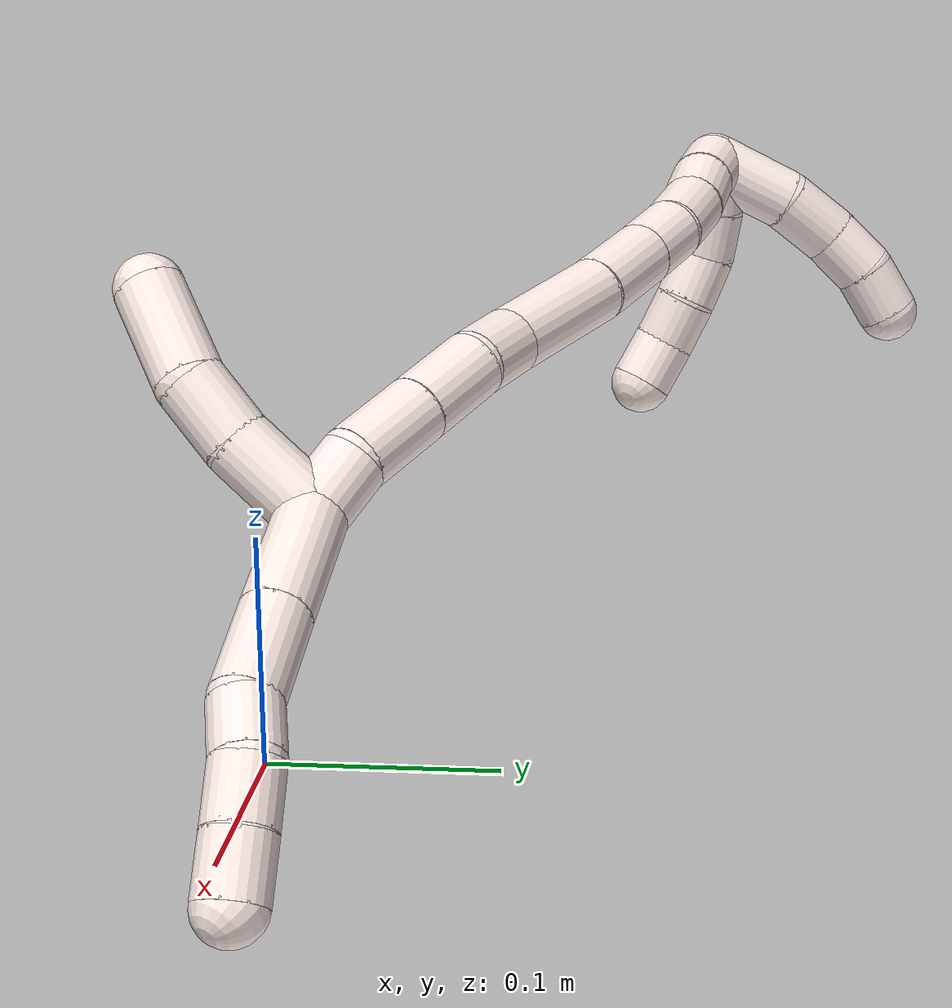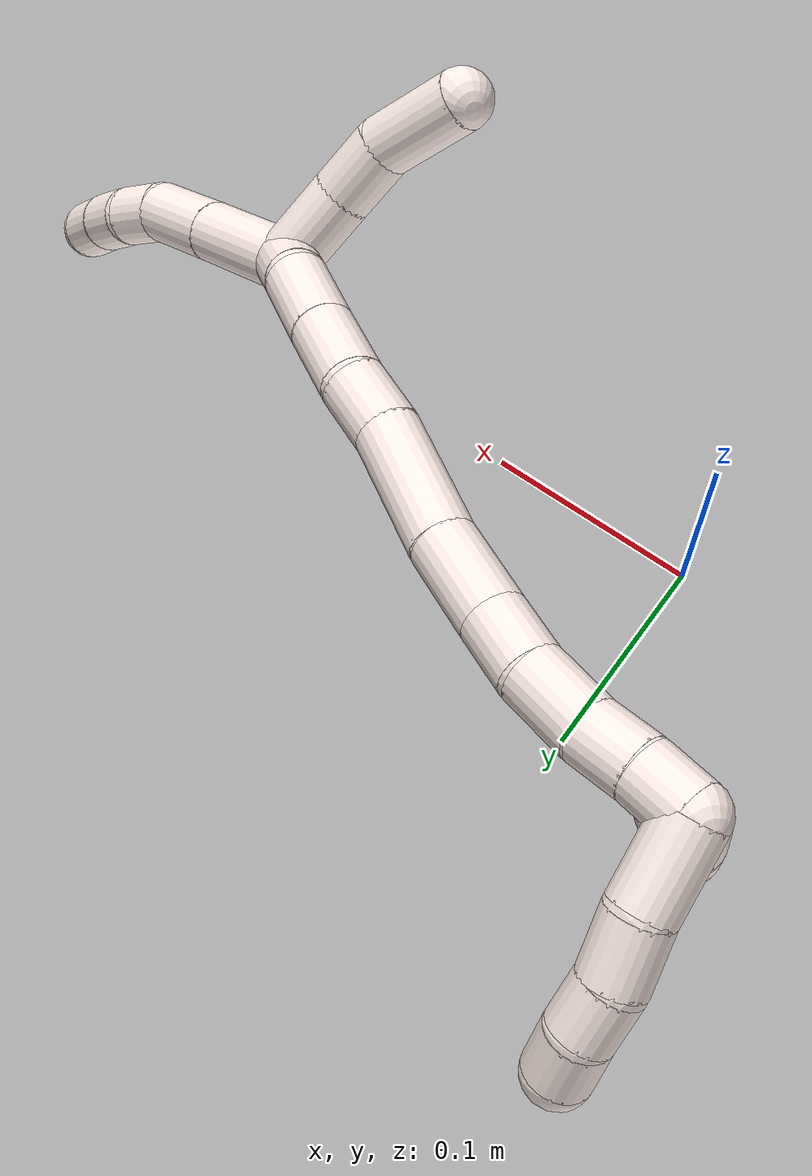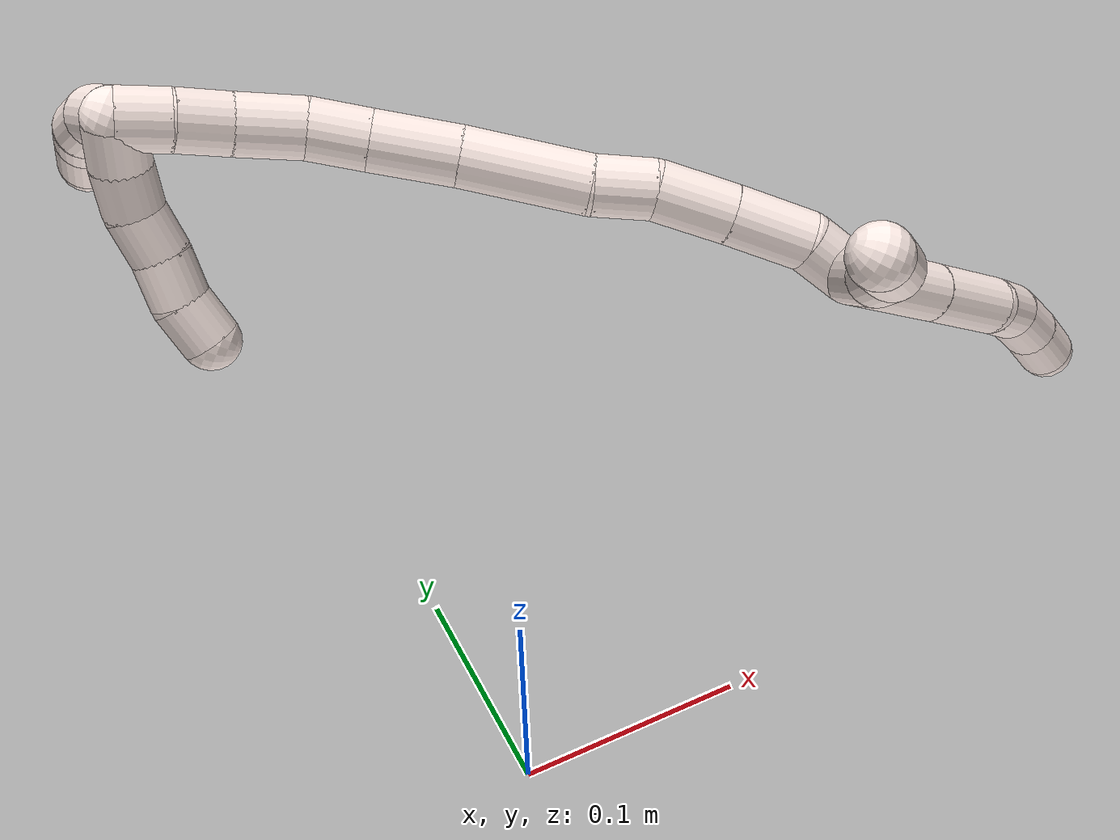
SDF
<sdf version="1.7">
 <world name="default">
  <model name="11">
   <static>0</static>
   <link name="11">
    <collision name="collision-cylinder-e_1_2_8">
     <pose>0.008145 -0.001947 -0.022142 3.05388 0.351233 2.65669</pose>
     <geometry><cylinder><radius>0.0125</radius><length>0.047346</length></cylinder></geometry>
     <surface>
      <friction><ode><mu>1.16</mu><mu2>1.16</mu2><slip1>0</slip1><slip2>0</slip2></ode></friction>
      <contact><ode><kp>1e+06</kp><kd>1</kd><max_vel>0</max_vel><min_depth>0.001</min_depth></ode></contact>
     </surface>
    </collision>
    <visual name="visual-cylinder-e_1_2_8">
     <pose>0.008145 -0.001947 -0.022142 3.05388 0.351233 2.65669</pose>
     <geometry><cylinder><radius>0.0125</radius><length>0.047346</length></cylinder></geometry>
     <material><ambient>1 0.933333 0.909804 1</ambient></material>
    </visual>
    <collision name="collision-cylinder-e_2_8_9">
     <pose>0.022716 -0.005257 -0.061333 3.06184 0.359433 2.70927</pose>
     <geometry><cylinder><radius>0.0125</radius><length>0.03654</length></cylinder></geometry>
     <surface>
      <friction><ode><mu>1.16</mu><mu2>1.16</mu2><slip1>0</slip1><slip2>0</slip2></ode></friction>
      <contact><ode><kp>1e+06</kp><kd>1</kd><max_vel>0</max_vel><min_depth>0.001</min_depth></ode></contact>
     </surface>
    </collision>
    <visual name="visual-cylinder-e_2_8_9">
     <pose>0.022716 -0.005257 -0.061333 3.06184 0.359433 2.70927</pose>
     <geometry><cylinder><radius>0.0125</radius><length>0.03654</length></cylinder></geometry>
     <material><ambient>1 0.933333 0.909804 1</ambient></material>
    </visual>
    <collision name="collision-cylinder-e_3_9_10">
     <pose>0.035507 -0.005911 -0.086712 -3.05675 0.650609 -2.89121</pose>
     <geometry><cylinder><radius>0.0125</radius><length>0.021016</length></cylinder></geometry>
     <surface>
      <friction><ode><mu>1.16</mu><mu2>1.16</mu2><slip1>0</slip1><slip2>0</slip2></ode></friction>
      <contact><ode><kp>1e+06</kp><kd>1</kd><max_vel>0</max_vel><min_depth>0.001</min_depth></ode></contact>
     </surface>
    </collision>
    <visual name="visual-cylinder-e_3_9_10">
     <pose>0.035507 -0.005911 -0.086712 -3.05675 0.650609 -2.89121</pose>
     <geometry><cylinder><radius>0.0125</radius><length>0.021016</length></cylinder></geometry>
     <material><ambient>1 0.933333 0.909804 1</ambient></material>
    </visual>
    <collision name="collision-cylinder-e_4_10_11">
     <pose>0.047006 -0.002086 -0.104545 -2.82471 0.474379 -1.97352</pose>
     <geometry><cylinder><radius>0.0125</radius><length>0.02248</length></cylinder></geometry>
     <surface>
      <friction><ode><mu>1.16</mu><mu2>1.16</mu2><slip1>0</slip1><slip2>0</slip2></ode></friction>
      <contact><ode><kp>1e+06</kp><kd>1</kd><max_vel>0</max_vel><min_depth>0.001</min_depth></ode></contact>
     </surface>
    </collision>
    <visual name="visual-cylinder-e_4_10_11">
     <pose>0.047006 -0.002086 -0.104545 -2.82471 0.474379 -1.97352</pose>
     <geometry><cylinder><radius>0.0125</radius><length>0.02248</length></cylinder></geometry>
     <material><ambient>1 0.933333 0.909804 1</ambient></material>
    </visual>
    <collision name="collision-cylinder-e_5_11_6">
     <pose>0.057009 0.004936 -0.123476 -2.74879 0.445083 -1.69912</pose>
     <geometry><cylinder><radius>0.0125</radius><length>0.022617</length></cylinder></geometry>
     <surface>
      <friction><ode><mu>1.16</mu><mu2>1.16</mu2><slip1>0</slip1><slip2>0</slip2></ode></friction>
      <contact><ode><kp>1e+06</kp><kd>1</kd><max_vel>0</max_vel><min_depth>0.001</min_depth></ode></contact>
     </surface>
    </collision>
    <visual name="visual-cylinder-e_5_11_6">
     <pose>0.057009 0.004936 -0.123476 -2.74879 0.445083 -1.69912</pose>
     <geometry><cylinder><radius>0.0125</radius><length>0.022617</length></cylinder></geometry>
     <material><ambient>1 0.933333 0.909804 1</ambient></material>
    </visual>
    <collision name="collision-cylinder-e_1_2_12">
     <pose>-0.016465 -0.005426 0.001987 1.21982 -1.23332 -0.91984</pose>
     <geometry><cylinder><radius>0.0125</radius><length>0.034899</length></cylinder></geometry>
     <surface>
      <friction><ode><mu>1.16</mu><mu2>1.16</mu2><slip1>0</slip1><slip2>0</slip2></ode></friction>
      <contact><ode><kp>1e+06</kp><kd>1</kd><max_vel>0</max_vel><min_depth>0.001</min_depth></ode></contact>
     </surface>
    </collision>
    <visual name="visual-cylinder-e_1_2_12">
     <pose>-0.016465 -0.005426 0.001987 1.21982 -1.23332 -0.91984</pose>
     <geometry><cylinder><radius>0.0125</radius><length>0.034899</length></cylinder></geometry>
     <material><ambient>1 0.933333 0.909804 1</ambient></material>
    </visual>
    <collision name="collision-cylinder-e_2_12_13">
     <pose>-0.044655 -0.015753 0.007151 0.99565 -1.10854 -0.649041</pose>
     <geometry><cylinder><radius>0.0125</radius><length>0.026198</length></cylinder></geometry>
     <surface>
      <friction><ode><mu>1.16</mu><mu2>1.16</mu2><slip1>0</slip1><slip2>0</slip2></ode></friction>
      <contact><ode><kp>1e+06</kp><kd>1</kd><max_vel>0</max_vel><min_depth>0.001</min_depth></ode></contact>
     </surface>
    </collision>
    <visual name="visual-cylinder-e_2_12_13">
     <pose>-0.044655 -0.015753 0.007151 0.99565 -1.10854 -0.649041</pose>
     <geometry><cylinder><radius>0.0125</radius><length>0.026198</length></cylinder></geometry>
     <material><ambient>1 0.933333 0.909804 1</ambient></material>
    </visual>
    <collision name="collision-cylinder-e_3_13_5">
     <pose>-0.072242 -0.024959 0.02073 0.392338 -0.95365 -0.204599</pose>
     <geometry><cylinder><radius>0.0125</radius><length>0.038903</length></cylinder></geometry>
     <surface>
      <friction><ode><mu>1.16</mu><mu2>1.16</mu2><slip1>0</slip1><slip2>0</slip2></ode></friction>
      <contact><ode><kp>1e+06</kp><kd>1</kd><max_vel>0</max_vel><min_depth>0.001</min_depth></ode></contact>
     </surface>
    </collision>
    <visual name="visual-cylinder-e_3_13_5">
     <pose>-0.072242 -0.024959 0.02073 0.392338 -0.95365 -0.204599</pose>
     <geometry><cylinder><radius>0.0125</radius><length>0.038903</length></cylinder></geometry>
     <material><ambient>1 0.933333 0.909804 1</ambient></material>
    </visual>
    <collision name="collision-cylinder-e_1_2_14">
     <pose>0.000426 -0.002553 0.011475 0.218898 0.03624 0.003983</pose>
     <geometry><cylinder><radius>0.0125</radius><length>0.023527</length></cylinder></geometry>
     <surface>
      <friction><ode><mu>1.16</mu><mu2>1.16</mu2><slip1>0</slip1><slip2>0</slip2></ode></friction>
      <contact><ode><kp>1e+06</kp><kd>1</kd><max_vel>0</max_vel><min_depth>0.001</min_depth></ode></contact>
     </surface>
    </collision>
    <visual name="visual-cylinder-e_1_2_14">
     <pose>0.000426 -0.002553 0.011475 0.218898 0.03624 0.003983</pose>
     <geometry><cylinder><radius>0.0125</radius><length>0.023527</length></cylinder></geometry>
     <material><ambient>1 0.933333 0.909804 1</ambient></material>
    </visual>
    <collision name="collision-cylinder-e_2_14_15">
     <pose>0.002534 -0.003397 0.03958 -0.102387 0.100236 -0.00514</pose>
     <geometry><cylinder><radius>0.0125</radius><length>0.033603</length></cylinder></geometry>
     <surface>
      <friction><ode><mu>1.16</mu><mu2>1.16</mu2><slip1>0</slip1><slip2>0</slip2></ode></friction>
      <contact><ode><kp>1e+06</kp><kd>1</kd><max_vel>0</max_vel><min_depth>0.001</min_depth></ode></contact>
     </surface>
    </collision>
    <visual name="visual-cylinder-e_2_14_15">
     <pose>0.002534 -0.003397 0.03958 -0.102387 0.100236 -0.00514</pose>
     <geometry><cylinder><radius>0.0125</radius><length>0.033603</length></cylinder></geometry>
     <material><ambient>1 0.933333 0.909804 1</ambient></material>
    </visual>
    <collision name="collision-cylinder-e_3_15_16">
     <pose>0.005586 0.000335 0.07227 -0.125316 0.084524 -0.005306</pose>
     <geometry><cylinder><radius>0.0125</radius><length>0.03249</length></cylinder></geometry>
     <surface>
      <friction><ode><mu>1.16</mu><mu2>1.16</mu2><slip1>0</slip1><slip2>0</slip2></ode></friction>
      <contact><ode><kp>1e+06</kp><kd>1</kd><max_vel>0</max_vel><min_depth>0.001</min_depth></ode></contact>
     </surface>
    </collision>
    <visual name="visual-cylinder-e_3_15_16">
     <pose>0.005586 0.000335 0.07227 -0.125316 0.084524 -0.005306</pose>
     <geometry><cylinder><radius>0.0125</radius><length>0.03249</length></cylinder></geometry>
     <material><ambient>1 0.933333 0.909804 1</ambient></material>
    </visual>
    <collision name="collision-cylinder-e_4_16_17">
     <pose>0.00715 0.006744 0.100247 -0.352624 0.015108 -0.002692</pose>
     <geometry><cylinder><radius>0.0125</radius><length>0.0254</length></cylinder></geometry>
     <surface>
      <friction><ode><mu>1.16</mu><mu2>1.16</mu2><slip1>0</slip1><slip2>0</slip2></ode></friction>
      <contact><ode><kp>1e+06</kp><kd>1</kd><max_vel>0</max_vel><min_depth>0.001</min_depth></ode></contact>
     </surface>
    </collision>
    <visual name="visual-cylinder-e_4_16_17">
     <pose>0.00715 0.006744 0.100247 -0.352624 0.015108 -0.002692</pose>
     <geometry><cylinder><radius>0.0125</radius><length>0.0254</length></cylinder></geometry>
     <material><ambient>1 0.933333 0.909804 1</ambient></material>
    </visual>
    <collision name="collision-cylinder-e_5_17_18">
     <pose>0.010858 0.017284 0.137721 -0.236344 0.132982 -0.015811</pose>
     <geometry><cylinder><radius>0.0125</radius><length>0.053043</length></cylinder></geometry>
     <surface>
      <friction><ode><mu>1.16</mu><mu2>1.16</mu2><slip1>0</slip1><slip2>0</slip2></ode></friction>
      <contact><ode><kp>1e+06</kp><kd>1</kd><max_vel>0</max_vel><min_depth>0.001</min_depth></ode></contact>
     </surface>
    </collision>
    <visual name="visual-cylinder-e_5_17_18">
     <pose>0.010858 0.017284 0.137721 -0.236344 0.132982 -0.015811</pose>
     <geometry><cylinder><radius>0.0125</radius><length>0.053043</length></cylinder></geometry>
     <material><ambient>1 0.933333 0.909804 1</ambient></material>
    </visual>
    <collision name="collision-cylinder-e_6_18_19">
     <pose>0.014908 0.027822 0.180566 -0.248289 0.029911 -0.003733</pose>
     <geometry><cylinder><radius>0.0125</radius><length>0.035687</length></cylinder></geometry>
     <surface>
      <friction><ode><mu>1.16</mu><mu2>1.16</mu2><slip1>0</slip1><slip2>0</slip2></ode></friction>
      <contact><ode><kp>1e+06</kp><kd>1</kd><max_vel>0</max_vel><min_depth>0.001</min_depth></ode></contact>
     </surface>
    </collision>
    <visual name="visual-cylinder-e_6_18_19">
     <pose>0.014908 0.027822 0.180566 -0.248289 0.029911 -0.003733</pose>
     <geometry><cylinder><radius>0.0125</radius><length>0.035687</length></cylinder></geometry>
     <material><ambient>1 0.933333 0.909804 1</ambient></material>
    </visual>
    <collision name="collision-cylinder-e_7_19_20">
     <pose>0.015616 0.035048 0.209795 -0.233678 0.014217 -0.001669</pose>
     <geometry><cylinder><radius>0.0125</radius><length>0.024551</length></cylinder></geometry>
     <surface>
      <friction><ode><mu>1.16</mu><mu2>1.16</mu2><slip1>0</slip1><slip2>0</slip2></ode></friction>
      <contact><ode><kp>1e+06</kp><kd>1</kd><max_vel>0</max_vel><min_depth>0.001</min_depth></ode></contact>
     </surface>
    </collision>
    <visual name="visual-cylinder-e_7_19_20">
     <pose>0.015616 0.035048 0.209795 -0.233678 0.014217 -0.001669</pose>
     <geometry><cylinder><radius>0.0125</radius><length>0.024551</length></cylinder></geometry>
     <material><ambient>1 0.933333 0.909804 1</ambient></material>
    </visual>
    <collision name="collision-cylinder-e_8_20_21">
     <pose>0.01373 0.042374 0.234918 -0.327905 -0.146912 0.024347</pose>
     <geometry><cylinder><radius>0.0125</radius><length>0.028152</length></cylinder></geometry>
     <surface>
      <friction><ode><mu>1.16</mu><mu2>1.16</mu2><slip1>0</slip1><slip2>0</slip2></ode></friction>
      <contact><ode><kp>1e+06</kp><kd>1</kd><max_vel>0</max_vel><min_depth>0.001</min_depth></ode></contact>
     </surface>
    </collision>
    <visual name="visual-cylinder-e_8_20_21">
     <pose>0.01373 0.042374 0.234918 -0.327905 -0.146912 0.024347</pose>
     <geometry><cylinder><radius>0.0125</radius><length>0.028152</length></cylinder></geometry>
     <material><ambient>1 0.933333 0.909804 1</ambient></material>
    </visual>
    <collision name="collision-cylinder-e_9_21_22">
     <pose>0.008627 0.049765 0.25839 -0.275302 -0.277279 0.038654</pose>
     <geometry><cylinder><radius>0.0125</radius><length>0.022234</length></cylinder></geometry>
     <surface>
      <friction><ode><mu>1.16</mu><mu2>1.16</mu2><slip1>0</slip1><slip2>0</slip2></ode></friction>
      <contact><ode><kp>1e+06</kp><kd>1</kd><max_vel>0</max_vel><min_depth>0.001</min_depth></ode></contact>
     </surface>
    </collision>
    <visual name="visual-cylinder-e_9_21_22">
     <pose>0.008627 0.049765 0.25839 -0.275302 -0.277279 0.038654</pose>
     <geometry><cylinder><radius>0.0125</radius><length>0.022234</length></cylinder></geometry>
     <material><ambient>1 0.933333 0.909804 1</ambient></material>
    </visual>
    <collision name="collision-cylinder-e_10_22_1">
     <pose>0.003424 0.056208 0.278498 -0.345711 -0.204048 0.035747</pose>
     <geometry><cylinder><radius>0.0125</radius><length>0.021314</length></cylinder></geometry>
     <surface>
      <friction><ode><mu>1.16</mu><mu2>1.16</mu2><slip1>0</slip1><slip2>0</slip2></ode></friction>
      <contact><ode><kp>1e+06</kp><kd>1</kd><max_vel>0</max_vel><min_depth>0.001</min_depth></ode></contact>
     </surface>
    </collision>
    <visual name="visual-cylinder-e_10_22_1">
     <pose>0.003424 0.056208 0.278498 -0.345711 -0.204048 0.035747</pose>
     <geometry><cylinder><radius>0.0125</radius><length>0.021314</length></cylinder></geometry>
     <material><ambient>1 0.933333 0.909804 1</ambient></material>
    </visual>
    <collision name="collision-cylinder-e_1_1_23">
     <pose>0.004111 0.068586 0.284612 -1.96757 0.288565 -0.430061</pose>
     <geometry><cylinder><radius>0.0125</radius><length>0.02</length></cylinder></geometry>
     <surface>
      <friction><ode><mu>1.16</mu><mu2>1.16</mu2><slip1>0</slip1><slip2>0</slip2></ode></friction>
      <contact><ode><kp>1e+06</kp><kd>1</kd><max_vel>0</max_vel><min_depth>0.001</min_depth></ode></contact>
     </surface>
    </collision>
    <visual name="visual-cylinder-e_1_1_23">
     <pose>0.004111 0.068586 0.284612 -1.96757 0.288565 -0.430061</pose>
     <geometry><cylinder><radius>0.0125</radius><length>0.02</length></cylinder></geometry>
     <material><ambient>1 0.933333 0.909804 1</ambient></material>
    </visual>
    <collision name="collision-cylinder-e_2_23_24">
     <pose>0.008504 0.085821 0.275696 -2.12644 0.155439 -0.27823</pose>
     <geometry><cylinder><radius>0.0125</radius><length>0.02</length></cylinder></geometry>
     <surface>
      <friction><ode><mu>1.16</mu><mu2>1.16</mu2><slip1>0</slip1><slip2>0</slip2></ode></friction>
      <contact><ode><kp>1e+06</kp><kd>1</kd><max_vel>0</max_vel><min_depth>0.001</min_depth></ode></contact>
     </surface>
    </collision>
    <visual name="visual-cylinder-e_2_23_24">
     <pose>0.008504 0.085821 0.275696 -2.12644 0.155439 -0.27823</pose>
     <geometry><cylinder><radius>0.0125</radius><length>0.02</length></cylinder></geometry>
     <material><ambient>1 0.933333 0.909804 1</ambient></material>
    </visual>
    <collision name="collision-cylinder-e_3_24_25">
     <pose>0.01029 0.10087 0.263024 -2.41315 0.023792 -0.062392</pose>
     <geometry><cylinder><radius>0.0125</radius><length>0.02</length></cylinder></geometry>
     <surface>
      <friction><ode><mu>1.16</mu><mu2>1.16</mu2><slip1>0</slip1><slip2>0</slip2></ode></friction>
      <contact><ode><kp>1e+06</kp><kd>1</kd><max_vel>0</max_vel><min_depth>0.001</min_depth></ode></contact>
     </surface>
    </collision>
    <visual name="visual-cylinder-e_3_24_25">
     <pose>0.01029 0.10087 0.263024 -2.41315 0.023792 -0.062392</pose>
     <geometry><cylinder><radius>0.0125</radius><length>0.02</length></cylinder></geometry>
     <material><ambient>1 0.933333 0.909804 1</ambient></material>
    </visual>
    <collision name="collision-cylinder-e_4_25_26">
     <pose>0.009798 0.114934 0.248889 -2.30413 -0.073122 0.164006</pose>
     <geometry><cylinder><radius>0.0125</radius><length>0.02</length></cylinder></geometry>
     <surface>
      <friction><ode><mu>1.16</mu><mu2>1.16</mu2><slip1>0</slip1><slip2>0</slip2></ode></friction>
      <contact><ode><kp>1e+06</kp><kd>1</kd><max_vel>0</max_vel><min_depth>0.001</min_depth></ode></contact>
     </surface>
    </collision>
    <visual name="visual-cylinder-e_4_25_26">
     <pose>0.009798 0.114934 0.248889 -2.30413 -0.073122 0.164006</pose>
     <geometry><cylinder><radius>0.0125</radius><length>0.02</length></cylinder></geometry>
     <material><ambient>1 0.933333 0.909804 1</ambient></material>
    </visual>
    <collision name="collision-cylinder-e_5_26_4">
     <pose>0.008701 0.127837 0.233865 -2.55965 -0.036665 0.122294</pose>
     <geometry><cylinder><radius>0.0125</radius><length>0.02</length></cylinder></geometry>
     <surface>
      <friction><ode><mu>1.16</mu><mu2>1.16</mu2><slip1>0</slip1><slip2>0</slip2></ode></friction>
      <contact><ode><kp>1e+06</kp><kd>1</kd><max_vel>0</max_vel><min_depth>0.001</min_depth></ode></contact>
     </surface>
    </collision>
    <visual name="visual-cylinder-e_5_26_4">
     <pose>0.008701 0.127837 0.233865 -2.55965 -0.036665 0.122294</pose>
     <geometry><cylinder><radius>0.0125</radius><length>0.02</length></cylinder></geometry>
     <material><ambient>1 0.933333 0.909804 1</ambient></material>
    </visual>
    <collision name="collision-cylinder-e_1_1_27">
     <pose>0.016532 0.065514 0.292728 -0.917989 1.12675 -0.605163</pose>
     <geometry><cylinder><radius>0.0125</radius><length>0.033813</length></cylinder></geometry>
     <surface>
      <friction><ode><mu>1.16</mu><mu2>1.16</mu2><slip1>0</slip1><slip2>0</slip2></ode></friction>
      <contact><ode><kp>1e+06</kp><kd>1</kd><max_vel>0</max_vel><min_depth>0.001</min_depth></ode></contact>
     </surface>
    </collision>
    <visual name="visual-cylinder-e_1_1_27">
     <pose>0.016532 0.065514 0.292728 -0.917989 1.12675 -0.605163</pose>
     <geometry><cylinder><radius>0.0125</radius><length>0.033813</length></cylinder></geometry>
     <material><ambient>1 0.933333 0.909804 1</ambient></material>
    </visual>
    <collision name="collision-cylinder-e_2_27_28">
     <pose>0.041974 0.07801 0.299608 -1.21905 0.957283 -0.695165</pose>
     <geometry><cylinder><radius>0.0125</radius><length>0.024889</length></cylinder></geometry>
     <surface>
      <friction><ode><mu>1.16</mu><mu2>1.16</mu2><slip1>0</slip1><slip2>0</slip2></ode></friction>
      <contact><ode><kp>1e+06</kp><kd>1</kd><max_vel>0</max_vel><min_depth>0.001</min_depth></ode></contact>
     </surface>
    </collision>
    <visual name="visual-cylinder-e_2_27_28">
     <pose>0.041974 0.07801 0.299608 -1.21905 0.957283 -0.695165</pose>
     <geometry><cylinder><radius>0.0125</radius><length>0.024889</length></cylinder></geometry>
     <material><ambient>1 0.933333 0.909804 1</ambient></material>
    </visual>
    <collision name="collision-cylinder-e_3_28_29">
     <pose>0.061067 0.090111 0.302085 -1.56919 1.02842 -1.02703</pose>
     <geometry><cylinder><radius>0.0125</radius><length>0.020825</length></cylinder></geometry>
     <surface>
      <friction><ode><mu>1.16</mu><mu2>1.16</mu2><slip1>0</slip1><slip2>0</slip2></ode></friction>
      <contact><ode><kp>1e+06</kp><kd>1</kd><max_vel>0</max_vel><min_depth>0.001</min_depth></ode></contact>
     </surface>
    </collision>
    <visual name="visual-cylinder-e_3_28_29">
     <pose>0.061067 0.090111 0.302085 -1.56919 1.02842 -1.02703</pose>
     <geometry><cylinder><radius>0.0125</radius><length>0.020825</length></cylinder></geometry>
     <material><ambient>1 0.933333 0.909804 1</ambient></material>
    </visual>
    <collision name="collision-cylinder-e_4_29_3">
     <pose>0.077282 0.102551 0.300819 -1.74938 0.793441 -0.929411</pose>
     <geometry><cylinder><radius>0.0125</radius><length>0.020472</length></cylinder></geometry>
     <surface>
      <friction><ode><mu>1.16</mu><mu2>1.16</mu2><slip1>0</slip1><slip2>0</slip2></ode></friction>
      <contact><ode><kp>1e+06</kp><kd>1</kd><max_vel>0</max_vel><min_depth>0.001</min_depth></ode></contact>
     </surface>
    </collision>
    <visual name="visual-cylinder-e_4_29_3">
     <pose>0.077282 0.102551 0.300819 -1.74938 0.793441 -0.929411</pose>
     <geometry><cylinder><radius>0.0125</radius><length>0.020472</length></cylinder></geometry>
     <material><ambient>1 0.933333 0.909804 1</ambient></material>
    </visual>
    <collision name="collision-sphere-3">
     <pose>0.084578 0.109616 0.299543 0 -0 0</pose>
     <geometry><sphere><radius>0.0125</radius></sphere></geometry>
     <surface>
      <friction><ode><mu>1.16</mu><mu2>1.16</mu2><slip1>0</slip1><slip2>0</slip2></ode></friction>
      <contact><ode><kp>1e+06</kp><kd>1</kd><max_vel>0</max_vel><min_depth>0.001</min_depth></ode></contact>
     </surface>
    </collision>
    <visual name="visual-sphere-3">
     <pose>0.084578 0.109616 0.299543 0 -0 0</pose>
     <geometry><sphere><radius>0.0125</radius></sphere></geometry>
     <material><ambient>1 0.933333 0.909804 1</ambient></material>
    </visual>
    <collision name="collision-sphere-29">
     <pose>0.069986 0.095486 0.302094 0 -0 0</pose>
     <geometry><sphere><radius>0.0125</radius></sphere></geometry>
     <surface>
      <friction><ode><mu>1.16</mu><mu2>1.16</mu2><slip1>0</slip1><slip2>0</slip2></ode></friction>
      <contact><ode><kp>1e+06</kp><kd>1</kd><max_vel>0</max_vel><min_depth>0.001</min_depth></ode></contact>
     </surface>
    </collision>
    <visual name="visual-sphere-29">
     <pose>0.069986 0.095486 0.302094 0 -0 0</pose>
     <geometry><sphere><radius>0.0125</radius></sphere></geometry>
     <material><ambient>1 0.933333 0.909804 1</ambient></material>
    </visual>
    <collision name="collision-sphere-28">
     <pose>0.052149 0.084736 0.302077 0 -0 0</pose>
     <geometry><sphere><radius>0.0125</radius></sphere></geometry>
     <surface>
      <friction><ode><mu>1.16</mu><mu2>1.16</mu2><slip1>0</slip1><slip2>0</slip2></ode></friction>
      <contact><ode><kp>1e+06</kp><kd>1</kd><max_vel>0</max_vel><min_depth>0.001</min_depth></ode></contact>
     </surface>
    </collision>
    <visual name="visual-sphere-28">
     <pose>0.052149 0.084736 0.302077 0 -0 0</pose>
     <geometry><sphere><radius>0.0125</radius></sphere></geometry>
     <material><ambient>1 0.933333 0.909804 1</ambient></material>
    </visual>
    <collision name="collision-sphere-27">
     <pose>0.031799 0.071284 0.29714 0 -0 0</pose>
     <geometry><sphere><radius>0.0125</radius></sphere></geometry>
     <surface>
      <friction><ode><mu>1.16</mu><mu2>1.16</mu2><slip1>0</slip1><slip2>0</slip2></ode></friction>
      <contact><ode><kp>1e+06</kp><kd>1</kd><max_vel>0</max_vel><min_depth>0.001</min_depth></ode></contact>
     </surface>
    </collision>
    <visual name="visual-sphere-27">
     <pose>0.031799 0.071284 0.29714 0 -0 0</pose>
     <geometry><sphere><radius>0.0125</radius></sphere></geometry>
     <material><ambient>1 0.933333 0.909804 1</ambient></material>
    </visual>
    <collision name="collision-sphere-4">
     <pose>0.008334 0.133329 0.225516 0 -0 0</pose>
     <geometry><sphere><radius>0.0125</radius></sphere></geometry>
     <surface>
      <friction><ode><mu>1.16</mu><mu2>1.16</mu2><slip1>0</slip1><slip2>0</slip2></ode></friction>
      <contact><ode><kp>1e+06</kp><kd>1</kd><max_vel>0</max_vel><min_depth>0.001</min_depth></ode></contact>
     </surface>
    </collision>
    <visual name="visual-sphere-4">
     <pose>0.008334 0.133329 0.225516 0 -0 0</pose>
     <geometry><sphere><radius>0.0125</radius></sphere></geometry>
     <material><ambient>1 0.933333 0.909804 1</ambient></material>
    </visual>
    <collision name="collision-sphere-26">
     <pose>0.009067 0.122344 0.242213 0 -0 0</pose>
     <geometry><sphere><radius>0.0125</radius></sphere></geometry>
     <surface>
      <friction><ode><mu>1.16</mu><mu2>1.16</mu2><slip1>0</slip1><slip2>0</slip2></ode></friction>
      <contact><ode><kp>1e+06</kp><kd>1</kd><max_vel>0</max_vel><min_depth>0.001</min_depth></ode></contact>
     </surface>
    </collision>
    <visual name="visual-sphere-26">
     <pose>0.009067 0.122344 0.242213 0 -0 0</pose>
     <geometry><sphere><radius>0.0125</radius></sphere></geometry>
     <material><ambient>1 0.933333 0.909804 1</ambient></material>
    </visual>
    <collision name="collision-sphere-25">
     <pose>0.010528 0.107525 0.255564 0 -0 0</pose>
     <geometry><sphere><radius>0.0125</radius></sphere></geometry>
     <surface>
      <friction><ode><mu>1.16</mu><mu2>1.16</mu2><slip1>0</slip1><slip2>0</slip2></ode></friction>
      <contact><ode><kp>1e+06</kp><kd>1</kd><max_vel>0</max_vel><min_depth>0.001</min_depth></ode></contact>
     </surface>
    </collision>
    <visual name="visual-sphere-25">
     <pose>0.010528 0.107525 0.255564 0 -0 0</pose>
     <geometry><sphere><radius>0.0125</radius></sphere></geometry>
     <material><ambient>1 0.933333 0.909804 1</ambient></material>
    </visual>
    <collision name="collision-sphere-24">
     <pose>0.010053 0.094214 0.270484 0 -0 0</pose>
     <geometry><sphere><radius>0.0125</radius></sphere></geometry>
     <surface>
      <friction><ode><mu>1.16</mu><mu2>1.16</mu2><slip1>0</slip1><slip2>0</slip2></ode></friction>
      <contact><ode><kp>1e+06</kp><kd>1</kd><max_vel>0</max_vel><min_depth>0.001</min_depth></ode></contact>
     </surface>
    </collision>
    <visual name="visual-sphere-24">
     <pose>0.010053 0.094214 0.270484 0 -0 0</pose>
     <geometry><sphere><radius>0.0125</radius></sphere></geometry>
     <material><ambient>1 0.933333 0.909804 1</ambient></material>
    </visual>
    <collision name="collision-sphere-23">
     <pose>0.006956 0.077428 0.280907 0 -0 0</pose>
     <geometry><sphere><radius>0.0125</radius></sphere></geometry>
     <surface>
      <friction><ode><mu>1.16</mu><mu2>1.16</mu2><slip1>0</slip1><slip2>0</slip2></ode></friction>
      <contact><ode><kp>1e+06</kp><kd>1</kd><max_vel>0</max_vel><min_depth>0.001</min_depth></ode></contact>
     </surface>
    </collision>
    <visual name="visual-sphere-23">
     <pose>0.006956 0.077428 0.280907 0 -0 0</pose>
     <geometry><sphere><radius>0.0125</radius></sphere></geometry>
     <material><ambient>1 0.933333 0.909804 1</ambient></material>
    </visual>
    <collision name="collision-sphere-1">
     <pose>0.001265 0.059745 0.288316 0 -0 0</pose>
     <geometry><sphere><radius>0.0125</radius></sphere></geometry>
     <surface>
      <friction><ode><mu>1.16</mu><mu2>1.16</mu2><slip1>0</slip1><slip2>0</slip2></ode></friction>
      <contact><ode><kp>1e+06</kp><kd>1</kd><max_vel>0</max_vel><min_depth>0.001</min_depth></ode></contact>
     </surface>
    </collision>
    <visual name="visual-sphere-1">
     <pose>0.001265 0.059745 0.288316 0 -0 0</pose>
     <geometry><sphere><radius>0.0125</radius></sphere></geometry>
     <material><ambient>1 0.933333 0.909804 1</ambient></material>
    </visual>
    <collision name="collision-sphere-22">
     <pose>0.005584 0.052672 0.268679 0 -0 0</pose>
     <geometry><sphere><radius>0.0125</radius></sphere></geometry>
     <surface>
      <friction><ode><mu>1.16</mu><mu2>1.16</mu2><slip1>0</slip1><slip2>0</slip2></ode></friction>
      <contact><ode><kp>1e+06</kp><kd>1</kd><max_vel>0</max_vel><min_depth>0.001</min_depth></ode></contact>
     </surface>
    </collision>
    <visual name="visual-sphere-22">
     <pose>0.005584 0.052672 0.268679 0 -0 0</pose>
     <geometry><sphere><radius>0.0125</radius></sphere></geometry>
     <material><ambient>1 0.933333 0.909804 1</ambient></material>
    </visual>
    <collision name="collision-sphere-21">
     <pose>0.01167 0.046859 0.2481 0 -0 0</pose>
     <geometry><sphere><radius>0.0125</radius></sphere></geometry>
     <surface>
      <friction><ode><mu>1.16</mu><mu2>1.16</mu2><slip1>0</slip1><slip2>0</slip2></ode></friction>
      <contact><ode><kp>1e+06</kp><kd>1</kd><max_vel>0</max_vel><min_depth>0.001</min_depth></ode></contact>
     </surface>
    </collision>
    <visual name="visual-sphere-21">
     <pose>0.01167 0.046859 0.2481 0 -0 0</pose>
     <geometry><sphere><radius>0.0125</radius></sphere></geometry>
     <material><ambient>1 0.933333 0.909804 1</ambient></material>
    </visual>
    <collision name="collision-sphere-6">
     <pose>0.061877 0.008843 -0.132905 0 -0 0</pose>
     <geometry><sphere><radius>0.0125</radius></sphere></geometry>
     <surface>
      <friction><ode><mu>1.16</mu><mu2>1.16</mu2><slip1>0</slip1><slip2>0</slip2></ode></friction>
      <contact><ode><kp>1e+06</kp><kd>1</kd><max_vel>0</max_vel><min_depth>0.001</min_depth></ode></contact>
     </surface>
    </collision>
    <visual name="visual-sphere-6">
     <pose>0.061877 0.008843 -0.132905 0 -0 0</pose>
     <geometry><sphere><radius>0.0125</radius></sphere></geometry>
     <material><ambient>1 0.933333 0.909804 1</ambient></material>
    </visual>
    <collision name="collision-sphere-11">
     <pose>0.05214 0.001029 -0.114046 0 -0 0</pose>
     <geometry><sphere><radius>0.0125</radius></sphere></geometry>
     <surface>
      <friction><ode><mu>1.16</mu><mu2>1.16</mu2><slip1>0</slip1><slip2>0</slip2></ode></friction>
      <contact><ode><kp>1e+06</kp><kd>1</kd><max_vel>0</max_vel><min_depth>0.001</min_depth></ode></contact>
     </surface>
    </collision>
    <visual name="visual-sphere-11">
     <pose>0.05214 0.001029 -0.114046 0 -0 0</pose>
     <geometry><sphere><radius>0.0125</radius></sphere></geometry>
     <material><ambient>1 0.933333 0.909804 1</ambient></material>
    </visual>
    <collision name="collision-sphere-10">
     <pose>0.041871 -0.005202 -0.095044 0 -0 0</pose>
     <geometry><sphere><radius>0.0125</radius></sphere></geometry>
     <surface>
      <friction><ode><mu>1.16</mu><mu2>1.16</mu2><slip1>0</slip1><slip2>0</slip2></ode></friction>
      <contact><ode><kp>1e+06</kp><kd>1</kd><max_vel>0</max_vel><min_depth>0.001</min_depth></ode></contact>
     </surface>
    </collision>
    <visual name="visual-sphere-10">
     <pose>0.041871 -0.005202 -0.095044 0 -0 0</pose>
     <geometry><sphere><radius>0.0125</radius></sphere></geometry>
     <material><ambient>1 0.933333 0.909804 1</ambient></material>
    </visual>
    <collision name="collision-sphere-9">
     <pose>0.029142 -0.006619 -0.078381 0 -0 0</pose>
     <geometry><sphere><radius>0.0125</radius></sphere></geometry>
     <surface>
      <friction><ode><mu>1.16</mu><mu2>1.16</mu2><slip1>0</slip1><slip2>0</slip2></ode></friction>
      <contact><ode><kp>1e+06</kp><kd>1</kd><max_vel>0</max_vel><min_depth>0.001</min_depth></ode></contact>
     </surface>
    </collision>
    <visual name="visual-sphere-9">
     <pose>0.029142 -0.006619 -0.078381 0 -0 0</pose>
     <geometry><sphere><radius>0.0125</radius></sphere></geometry>
     <material><ambient>1 0.933333 0.909804 1</ambient></material>
    </visual>
    <collision name="collision-sphere-2">
     <geometry><sphere><radius>0.0125</radius></sphere></geometry>
     <surface>
      <friction><ode><mu>1.16</mu><mu2>1.16</mu2><slip1>0</slip1><slip2>0</slip2></ode></friction>
      <contact><ode><kp>1e+06</kp><kd>1</kd><max_vel>0</max_vel><min_depth>0.001</min_depth></ode></contact>
     </surface>
    </collision>
    <visual name="visual-sphere-2">
     <geometry><sphere><radius>0.0125</radius></sphere></geometry>
     <material><ambient>1 0.933333 0.909804 1</ambient></material>
    </visual>
    <collision name="collision-sphere-19">
     <pose>0.015442 0.032205 0.197854 0 -0 0</pose>
     <geometry><sphere><radius>0.0125</radius></sphere></geometry>
     <surface>
      <friction><ode><mu>1.16</mu><mu2>1.16</mu2><slip1>0</slip1><slip2>0</slip2></ode></friction>
      <contact><ode><kp>1e+06</kp><kd>1</kd><max_vel>0</max_vel><min_depth>0.001</min_depth></ode></contact>
     </surface>
    </collision>
    <visual name="visual-sphere-19">
     <pose>0.015442 0.032205 0.197854 0 -0 0</pose>
     <geometry><sphere><radius>0.0125</radius></sphere></geometry>
     <material><ambient>1 0.933333 0.909804 1</ambient></material>
    </visual>
    <collision name="collision-sphere-8">
     <pose>0.01629 -0.003894 -0.044285 0 -0 0</pose>
     <geometry><sphere><radius>0.0125</radius></sphere></geometry>
     <surface>
      <friction><ode><mu>1.16</mu><mu2>1.16</mu2><slip1>0</slip1><slip2>0</slip2></ode></friction>
      <contact><ode><kp>1e+06</kp><kd>1</kd><max_vel>0</max_vel><min_depth>0.001</min_depth></ode></contact>
     </surface>
    </collision>
    <visual name="visual-sphere-8">
     <pose>0.01629 -0.003894 -0.044285 0 -0 0</pose>
     <geometry><sphere><radius>0.0125</radius></sphere></geometry>
     <material><ambient>1 0.933333 0.909804 1</ambient></material>
    </visual>
    <collision name="collision-sphere-12">
     <pose>-0.032931 -0.010851 0.003973 0 -0 0</pose>
     <geometry><sphere><radius>0.0125</radius></sphere></geometry>
     <surface>
      <friction><ode><mu>1.16</mu><mu2>1.16</mu2><slip1>0</slip1><slip2>0</slip2></ode></friction>
      <contact><ode><kp>1e+06</kp><kd>1</kd><max_vel>0</max_vel><min_depth>0.001</min_depth></ode></contact>
     </surface>
    </collision>
    <visual name="visual-sphere-12">
     <pose>-0.032931 -0.010851 0.003973 0 -0 0</pose>
     <geometry><sphere><radius>0.0125</radius></sphere></geometry>
     <material><ambient>1 0.933333 0.909804 1</ambient></material>
    </visual>
    <collision name="collision-sphere-13">
     <pose>-0.056379 -0.020655 0.010328 0 -0 0</pose>
     <geometry><sphere><radius>0.0125</radius></sphere></geometry>
     <surface>
      <friction><ode><mu>1.16</mu><mu2>1.16</mu2><slip1>0</slip1><slip2>0</slip2></ode></friction>
      <contact><ode><kp>1e+06</kp><kd>1</kd><max_vel>0</max_vel><min_depth>0.001</min_depth></ode></contact>
     </surface>
    </collision>
    <visual name="visual-sphere-13">
     <pose>-0.056379 -0.020655 0.010328 0 -0 0</pose>
     <geometry><sphere><radius>0.0125</radius></sphere></geometry>
     <material><ambient>1 0.933333 0.909804 1</ambient></material>
    </visual>
    <collision name="collision-sphere-5">
     <pose>-0.088106 -0.029263 0.031131 0 -0 0</pose>
     <geometry><sphere><radius>0.0125</radius></sphere></geometry>
     <surface>
      <friction><ode><mu>1.16</mu><mu2>1.16</mu2><slip1>0</slip1><slip2>0</slip2></ode></friction>
      <contact><ode><kp>1e+06</kp><kd>1</kd><max_vel>0</max_vel><min_depth>0.001</min_depth></ode></contact>
     </surface>
    </collision>
    <visual name="visual-sphere-5">
     <pose>-0.088106 -0.029263 0.031131 0 -0 0</pose>
     <geometry><sphere><radius>0.0125</radius></sphere></geometry>
     <material><ambient>1 0.933333 0.909804 1</ambient></material>
    </visual>
    <collision name="collision-sphere-14">
     <pose>0.000852 -0.005106 0.022951 0 -0 0</pose>
     <geometry><sphere><radius>0.0125</radius></sphere></geometry>
     <surface>
      <friction><ode><mu>1.16</mu><mu2>1.16</mu2><slip1>0</slip1><slip2>0</slip2></ode></friction>
      <contact><ode><kp>1e+06</kp><kd>1</kd><max_vel>0</max_vel><min_depth>0.001</min_depth></ode></contact>
     </surface>
    </collision>
    <visual name="visual-sphere-14">
     <pose>0.000852 -0.005106 0.022951 0 -0 0</pose>
     <geometry><sphere><radius>0.0125</radius></sphere></geometry>
     <material><ambient>1 0.933333 0.909804 1</ambient></material>
    </visual>
    <collision name="collision-sphere-15">
     <pose>0.004215 -0.001688 0.05621 0 -0 0</pose>
     <geometry><sphere><radius>0.0125</radius></sphere></geometry>
     <surface>
      <friction><ode><mu>1.16</mu><mu2>1.16</mu2><slip1>0</slip1><slip2>0</slip2></ode></friction>
      <contact><ode><kp>1e+06</kp><kd>1</kd><max_vel>0</max_vel><min_depth>0.001</min_depth></ode></contact>
     </surface>
    </collision>
    <visual name="visual-sphere-15">
     <pose>0.004215 -0.001688 0.05621 0 -0 0</pose>
     <geometry><sphere><radius>0.0125</radius></sphere></geometry>
     <material><ambient>1 0.933333 0.909804 1</ambient></material>
    </visual>
    <collision name="collision-sphere-16">
     <pose>0.006958 0.002358 0.08833 0 -0 0</pose>
     <geometry><sphere><radius>0.0125</radius></sphere></geometry>
     <surface>
      <friction><ode><mu>1.16</mu><mu2>1.16</mu2><slip1>0</slip1><slip2>0</slip2></ode></friction>
      <contact><ode><kp>1e+06</kp><kd>1</kd><max_vel>0</max_vel><min_depth>0.001</min_depth></ode></contact>
     </surface>
    </collision>
    <visual name="visual-sphere-16">
     <pose>0.006958 0.002358 0.08833 0 -0 0</pose>
     <geometry><sphere><radius>0.0125</radius></sphere></geometry>
     <material><ambient>1 0.933333 0.909804 1</ambient></material>
    </visual>
    <collision name="collision-sphere-17">
     <pose>0.007342 0.011129 0.112164 0 -0 0</pose>
     <geometry><sphere><radius>0.0125</radius></sphere></geometry>
     <surface>
      <friction><ode><mu>1.16</mu><mu2>1.16</mu2><slip1>0</slip1><slip2>0</slip2></ode></friction>
      <contact><ode><kp>1e+06</kp><kd>1</kd><max_vel>0</max_vel><min_depth>0.001</min_depth></ode></contact>
     </surface>
    </collision>
    <visual name="visual-sphere-17">
     <pose>0.007342 0.011129 0.112164 0 -0 0</pose>
     <geometry><sphere><radius>0.0125</radius></sphere></geometry>
     <material><ambient>1 0.933333 0.909804 1</ambient></material>
    </visual>
    <collision name="collision-sphere-18">
     <pose>0.014375 0.02344 0.163277 0 -0 0</pose>
     <geometry><sphere><radius>0.0125</radius></sphere></geometry>
     <surface>
      <friction><ode><mu>1.16</mu><mu2>1.16</mu2><slip1>0</slip1><slip2>0</slip2></ode></friction>
      <contact><ode><kp>1e+06</kp><kd>1</kd><max_vel>0</max_vel><min_depth>0.001</min_depth></ode></contact>
     </surface>
    </collision>
    <visual name="visual-sphere-18">
     <pose>0.014375 0.02344 0.163277 0 -0 0</pose>
     <geometry><sphere><radius>0.0125</radius></sphere></geometry>
     <material><ambient>1 0.933333 0.909804 1</ambient></material>
    </visual>
    <collision name="collision-sphere-20">
     <pose>0.015791 0.03789 0.221735 0 -0 0</pose>
     <geometry><sphere><radius>0.0125</radius></sphere></geometry>
     <surface>
      <friction><ode><mu>1.16</mu><mu2>1.16</mu2><slip1>0</slip1><slip2>0</slip2></ode></friction>
      <contact><ode><kp>1e+06</kp><kd>1</kd><max_vel>0</max_vel><min_depth>0.001</min_depth></ode></contact>
     </surface>
    </collision>
    <visual name="visual-sphere-20">
     <pose>0.015791 0.03789 0.221735 0 -0 0</pose>
     <geometry><sphere><radius>0.0125</radius></sphere></geometry>
     <material><ambient>1 0.933333 0.909804 1</ambient></material>
    </visual>
    <inertial>
     <pose>0.010186 0.029937 0.120564 0 -0 0</pose>
     <mass>0.75</mass>
     <inertia><ixx>4.3e-05</ixx><ixy>0</ixy><ixz>0</ixz><iyy>8.3e-05</iyy><iyz>0</iyz><izz>-1.1e-05</izz></inertia>
    </inertial>
   </link>
   <pose>0.177792 0.056325 0.167458 -1.08854 0.319292 1.20259</pose>
  </model>
 </world>
</sdf>
